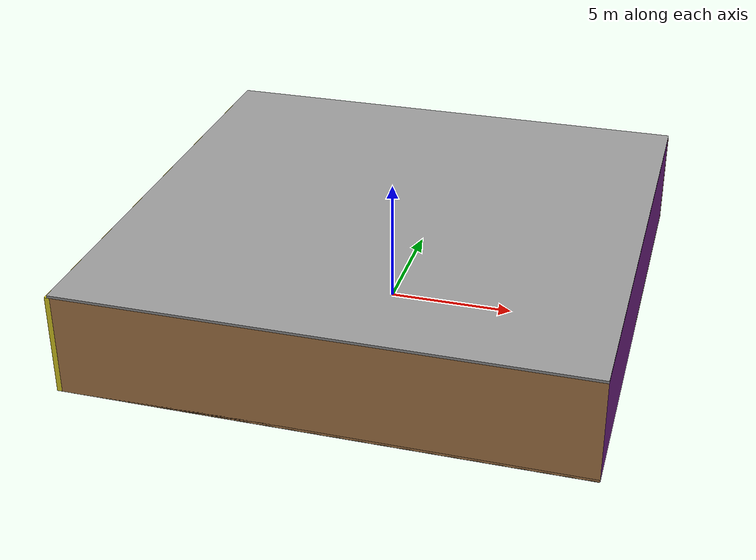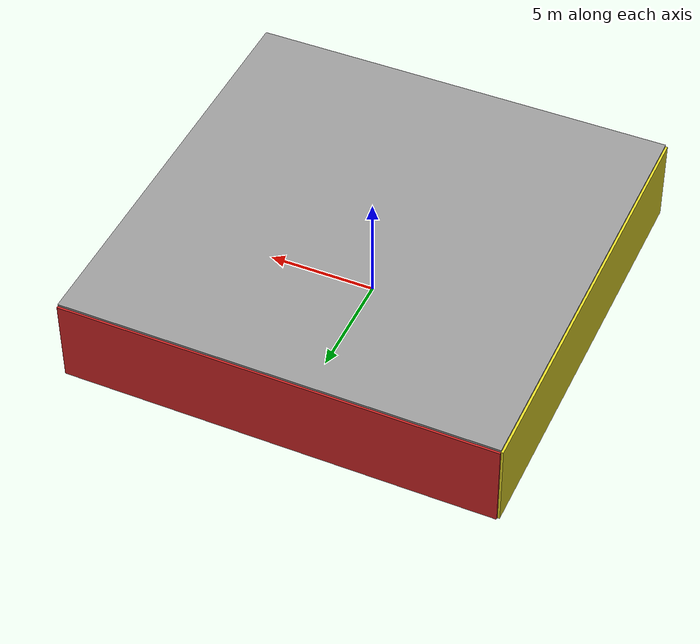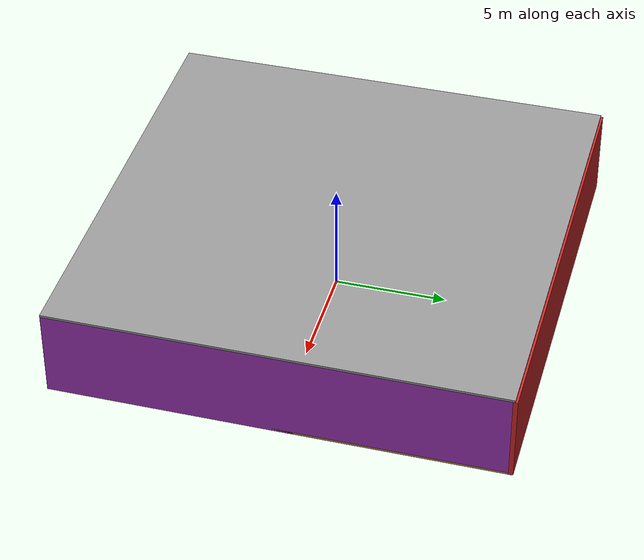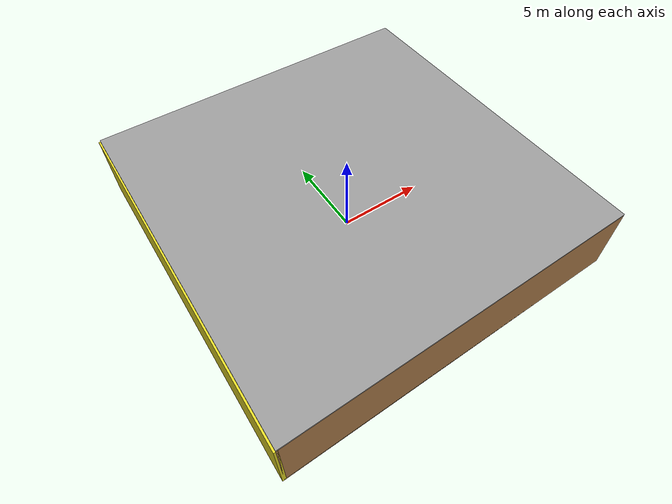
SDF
<sdf version="1.4">
 <world name="default">
  <physics type="ode">
   <max_step_size>0.001</max_step_size>
   <real_time_factor>1</real_time_factor>
   <real_time_update_rate>1000</real_time_update_rate>
   <gravity>0 0 -9.8</gravity>
  </physics>
  <scene><ambient>0.4 0.4 0.4 1</ambient><background>0.7 0.7 0.7 1</background><shadows>1</shadows></scene>
  <model name="Surrounding">
   <static>1</static>
   <link name="Ceiling">
    <collision name="Ceiling_Collision"><geometry><box><size>20 20 0.1</size></box></geometry></collision>
    <visual name="Ceiling_Visual">
     <geometry><box><size>20 20 0.1</size></box></geometry>
     <material>
      <script><uri>file://media/materials/scripts/gazebo.material</uri><name>Gazebo/Grey</name></script>
     </material>
    </visual>
    <pose>0 0 4.05 0 0 0</pose>
   </link>
   <link name="Wall_South">
    <collision name="Wall_South_Collision">
     <geometry><box><size>20 0 4</size></box></geometry>
     <pose>0 0 2 0 -0 0</pose>
    </collision>
    <visual name="Wall_South_Visual">
     <pose>0 0 2 0 -0 0</pose>
     <geometry><box><size>20 0 4</size></box></geometry>
     <material>
      <script><uri>file://media/materials/scripts/gazebo.material</uri><name>Gazebo/WoodPallet</name></script>
     </material>
    </visual>
    <velocity_decay><linear>0</linear><angular>0</angular></velocity_decay>
    <pose>0 -10 0 0 -0 0</pose>
   </link>
   <link name="Wall_East">
    <collision name="Wall_21_Collision">
     <geometry><box><size>20 0 4</size></box></geometry>
     <pose>0 0 2 0 -0 0</pose>
    </collision>
    <visual name="Wall_21_Visual">
     <pose>0 0 2 0 -0 0</pose>
     <geometry><box><size>20 0 4</size></box></geometry>
     <material>
      <script><uri>file://media/materials/scripts/gazebo.material</uri><name>Gazebo/PurpleGlow</name></script>
     </material>
    </visual>
    <velocity_decay><linear>0</linear><angular>0</angular></velocity_decay>
    <pose>10 0 0 0 -0 1.5708</pose>
   </link>
   <link name="Wall_North">
    <collision name="Wall_22_Collision">
     <geometry><box><size>20 0.2 4</size></box></geometry>
     <pose>0 0 2 0 -0 0</pose>
    </collision>
    <visual name="Wall_22_Visual">
     <pose>0 0 2 0 -0 0</pose>
     <geometry><box><size>20 0.2 4</size></box></geometry>
     <material>
      <script><uri>file://media/materials/scripts/gazebo.material</uri><name>Gazebo/RedBright</name></script>
     </material>
    </visual>
    <velocity_decay><linear>0</linear><angular>0</angular></velocity_decay>
    <pose>0 10 0 0 -0 0</pose>
   </link>
   <link name="Wall_West">
    <collision name="Wall_23_Collision">
     <geometry><box><size>20 0.2 4</size></box></geometry>
     <pose>0 0 2 0 -0 0</pose>
    </collision>
    <visual name="Wall_23_Visual">
     <pose>0 0 2 0 -0 0</pose>
     <geometry><box><size>20 0.2 4</size></box></geometry>
     <material>
      <script><uri>file://media/materials/scripts/gazebo.material</uri><name>Gazebo/YellowGlow</name></script>
     </material>
    </visual>
    <velocity_decay><linear>0</linear><angular>0</angular></velocity_decay>
    <pose>-10 0 0 0 0 -1.5708</pose>
   </link>
   <link name="Ground_link">
    <collision name="collision">
     <pose>0 0 .05 0 -0 0</pose>
     <geometry><box><size>20 20 0.1</size></box></geometry>
    </collision>
    <visual name="visual">
     <pose>0 0 .05 0 -0 0</pose>
     <geometry><box><size>20 20 0.1</size></box></geometry>
     <material>
      <script><uri>file://media/materials/scripts/gazebo.material</uri><name>Gazebo/Wood</name></script>
     </material>
    </visual>
   </link>
   <static>1</static>
  </model>
  <spherical_coordinates>
   <surface_model>EARTH_WGS84</surface_model>
   <latitude_deg>0</latitude_deg>
   <longitude_deg>0</longitude_deg>
   <elevation>0</elevation>
   <heading_deg>0</heading_deg>
  </spherical_coordinates>
  <light name="lightball_0" type="diffuse">
   <diffuse>0.8 0.8 0.8 1</diffuse>
   <specular>0.2 0.2 0.2 1</specular>
   <attenuation>
    <range>100</range>
    <constant>0.7</constant>
    <linear>0.01</linear>
    <quadratic>0.001</quadratic>
   </attenuation>
   <direction>-0.5 0.1 -0.9</direction>
   <pose>3.06334325164 6.9378521723 3.70644781284 0 0 0</pose>
  </light>
  <light name="lightball_1" type="diffuse">
   <diffuse>0.8 0.8 0.8 1</diffuse>
   <specular>0.2 0.2 0.2 1</specular>
   <attenuation>
    <range>100</range>
    <constant>0.7</constant>
    <linear>0.01</linear>
    <quadratic>0.001</quadratic>
   </attenuation>
   <direction>-0.5 0.1 -0.9</direction>
   <pose>1.40144687487 8.64026209622 1.62643668336 0 0 0</pose>
  </light>
  <light name="lightball_2" type="diffuse">
   <diffuse>0.8 0.8 0.8 1</diffuse>
   <specular>0.2 0.2 0.2 1</specular>
   <attenuation>
    <range>100</range>
    <constant>0.7</constant>
    <linear>0.01</linear>
    <quadratic>0.001</quadratic>
   </attenuation>
   <direction>-0.5 0.1 -0.9</direction>
   <pose>-8.78283740639 5.52207525629 1.79248885676 0 0 0</pose>
  </light>
  <light name="lightball_3" type="diffuse">
   <diffuse>0.8 0.8 0.8 1</diffuse>
   <specular>0.2 0.2 0.2 1</specular>
   <attenuation>
    <range>100</range>
    <constant>0.7</constant>
    <linear>0.01</linear>
    <quadratic>0.001</quadratic>
   </attenuation>
   <direction>-0.5 0.1 -0.9</direction>
   <pose>-6.72537945199 -8.32968438611 2.36929396204 0 0 0</pose>
  </light>
  <light name="lightball_4" type="diffuse">
   <diffuse>0.8 0.8 0.8 1</diffuse>
   <specular>0.2 0.2 0.2 1</specular>
   <attenuation>
    <range>100</range>
    <constant>0.7</constant>
    <linear>0.01</linear>
    <quadratic>0.001</quadratic>
   </attenuation>
   <direction>-0.5 0.1 -0.9</direction>
   <pose>-9.48987169954 6.9371421193 2.59370376274 0 0 0</pose>
  </light>
  <include>
   <uri>model://robocup_3Dsim_goal</uri>
   <pose>-7.27061695189 0.828277115552 0 0 0 1.64704702013</pose>
  </include>
  <include><uri>model://cabinet</uri><pose>-1.24878805639 -1.1152995254 0 0 0 1.25035437742</pose></include>
  <include>
   <uri>model://construction_cone</uri>
   <pose>-1.1920139908 2.5706319143 0 0 0 1.57338650874</pose>
  </include>
  <include>
   <uri>model://construction_cone</uri>
   <pose>2.23745062381 -4.97665064553 0 0 0 1.49660708072</pose>
  </include>
 </world>
</sdf>

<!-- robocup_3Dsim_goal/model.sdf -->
<sdf version="1.5">
  <model name="robocup_3d_goal">
    <static>true</static>
    <link name="left_post">
      <pose>0 1.05 0.45 0 0 0</pose>
      <collision name="collision">
        <geometry>
          <cylinder>
            <radius>0.05</radius>
            <length>0.9</length>
          </cylinder>
        </geometry>
      </collision>
      <visual name="visual">
        <geometry>
          <cylinder>
            <radius>0.05</radius>
            <length>0.9</length>
          </cylinder>
        </geometry>
        <material>
          <script>
            <uri>file://media/materials/scripts/gazebo.material</uri>
            <name>Gazebo/ZincYellow</name>
          </script>
        </material>
      </visual>
    </link>
    <link name="left_support_horiz_lower">
      <pose>0.30 1.05 0.01 0 0 0</pose>
      <collision name="collision">
        <geometry>
          <box>
            <size>0.50 0.02 0.02</size>
          </box>
        </geometry>
      </collision>
      <visual name="visual">
        <geometry>
          <box>
            <size>0.50 0.02 0.02</size>
          </box>
        </geometry>
        <material>
          <script>
            <uri>file://media/materials/scripts/gazebo.material</uri>
            <name>Gazebo/White</name>
          </script>
        </material>
      </visual>
    </link>
    <link name="left_support_horiz_upper">
      <pose>0.30 1.05 0.79 0 0 0</pose>
      <collision name="collision">
        <geometry>
          <box>
            <size>0.50 0.02 0.02</size>
          </box>
        </geometry>
      </collision>
      <visual name="visual">
        <geometry>
          <box>
            <size>0.50 0.02 0.02</size>
          </box>
        </geometry>
        <material>
          <script>
            <uri>file://media/materials/scripts/gazebo.material</uri>
            <name>Gazebo/White</name>
          </script>
        </material>
      </visual>
    </link>
    <link name="left_support_vertical">
      <pose>0.56 1.05 0.4 0 1.5708 0</pose>
      <collision name="collision">
        <geometry>
          <box>
            <size>0.80 0.02 0.02</size>
          </box>
        </geometry>
      </collision>
      <visual name="visual">
        <geometry>
          <box>
            <size>0.80 0.02 0.02</size>
          </box>
        </geometry>
        <material>
          <script>
            <uri>file://media/materials/scripts/gazebo.material</uri>
            <name>Gazebo/White</name>
          </script>
        </material>
      </visual>
    </link>
    <link name="right_support_horiz_lower">
      <pose>0.30 -1.05 0.01 0 0 0</pose>
      <collision name="collision">
        <geometry>
          <box>
            <size>0.50 0.02 0.02</size>
          </box>
        </geometry>
      </collision>
      <visual name="visual">
        <geometry>
          <box>
            <size>0.50 0.02 0.02</size>
          </box>
        </geometry>
        <material>
          <script>
            <uri>file://media/materials/scripts/gazebo.material</uri>
            <name>Gazebo/White</name>
          </script>
        </material>
      </visual>
    </link>
    <link name="right_support_horiz_upper">
      <pose>0.30 -1.05 0.79 0 0 0</pose>
      <collision name="collision">
        <geometry>
          <box>
            <size>0.50 0.02 0.02</size>
          </box>
        </geometry>
      </collision>
      <visual name="visual">
        <geometry>
          <box>
            <size>0.50 0.02 0.02</size>
          </box>
        </geometry>
        <material>
          <script>
            <uri>file://media/materials/scripts/gazebo.material</uri>
            <name>Gazebo/White</name>
          </script>
        </material>
      </visual>
    </link>
    <link name="right_support_vertical">
      <pose>0.56 -1.05 0.4 0 1.5708 0</pose>
      <collision name="collision">
        <geometry>
          <box>
            <size>0.80 0.02 0.02</size>
          </box>
        </geometry>
      </collision>
      <visual name="visual">
        <geometry>
          <box>
            <size>0.80 0.02 0.02</size>
          </box>
        </geometry>
        <material>
          <script>
            <uri>file://media/materials/scripts/gazebo.material</uri>
            <name>Gazebo/White</name>
          </script>
        </material>
      </visual>
    </link>
    <link name="center_support_horiz_lower">
      <pose>0.56 0 0.01 0 1.5708 0</pose>
      <collision name="collision">
        <geometry>
          <box>
            <size>0.02 2.08 0.02</size>
          </box>
        </geometry>
      </collision>
      <visual name="visual">
        <geometry>
          <box>
            <size>0.02 2.08 0.02</size>
          </box>
        </geometry>
        <material>
          <script>
            <uri>file://media/materials/scripts/gazebo.material</uri>
            <name>Gazebo/White</name>
          </script>
        </material>
      </visual>
    </link>
    <link name="center_support_horiz_upper">
      <pose>0.56 0 0.79 0 1.5708 0</pose>
      <collision name="collision">
        <geometry>
          <box>
            <size>0.02 2.08 0.02</size>
          </box>
        </geometry>
      </collision>
      <visual name="visual">
        <geometry>
          <box>
            <size>0.02 2.08 0.02</size>
          </box>
        </geometry>
        <material>
          <script>
            <uri>file://media/materials/scripts/gazebo.material</uri>
            <name>Gazebo/White</name>
          </script>
        </material>
      </visual>
    </link>
    <link name="right_post">
      <pose>0 -1.05 0.45 0 0 0</pose>
      <collision name="collision">
        <geometry>
          <cylinder>
            <radius>0.05</radius>
            <length>0.9</length>
          </cylinder>
        </geometry>
      </collision>
      <visual name="visual">
        <geometry>
          <cylinder>
            <radius>0.05</radius>
            <length>0.9</length>
          </cylinder>
        </geometry>
        <material>
          <script>
            <uri>file://media/materials/scripts/gazebo.material</uri>
            <name>Gazebo/ZincYellow</name>
          </script>
        </material>
      </visual>
    </link>
    <link name="crossbar">
      <pose>0 0 0.85 1.57 1.57 0</pose>
      <collision name="collision">
        <geometry>
          <cylinder>
            <radius>0.05</radius>
            <length>2.0</length>
          </cylinder>
        </geometry>
      </collision>
      <visual name="visual">
        <geometry>
          <cylinder>
            <radius>0.05</radius>
            <length>2.0</length>
          </cylinder>
        </geometry>
        <material>
          <script>
            <uri>file://media/materials/scripts/gazebo.material</uri>
            <name>Gazebo/ZincYellow</name>
          </script>
        </material>
      </visual>
    </link>
    <link name="center_net">
      <pose>0.56 0 0.40 0 0 0</pose>
      <collision name="collision">
        <geometry>
          <box>
            <size>0.01 2.1 0.80</size>
          </box>
        </geometry>
      </collision>
      <visual name="visual">
        <geometry>
          <box>
            <size>0.01 2.1 0.80</size>
          </box>
        </geometry>
        <material>
          <script>
            <uri>model://../model_source/models/robocup09_spl_field/materials/scripts/</uri>
            <uri>model://../model_source/models/robocup09_spl_field/materials/textures/</uri>
            <name>RoboCup/Net</name>
          </script>
        </material>
      </visual>
    </link>
    <link name="left_net">
      <pose>0.30 1.05 0.40 0 0 0</pose>
      <collision name="collision">
        <geometry>
          <box>
            <size>0.50 0.01 0.76</size>
          </box>
        </geometry>
      </collision>
      <visual name="visual">
        <geometry>
          <box>
            <size>0.50 0.01 0.76</size>
          </box>
        </geometry>
        <material>
          <script>
            <uri>model://../model_source/models/robocup09_spl_field/materials/scripts/</uri>
            <uri>model://../model_source/models/robocup09_spl_field/materials/textures/</uri>
            <name>RoboCup/Net</name>
          </script>
        </material>
      </visual>
    </link>
    <link name="right_net">
      <pose>0.30 -1.05 0.40 0 0 0</pose>
      <collision name="collision">
        <geometry>
          <box>
            <size>0.50 0.01 0.76</size>
          </box>
        </geometry>
      </collision>
      <visual name="visual">
        <geometry>
          <box>
            <size>0.50 0.01 0.76</size>
          </box>
        </geometry>
        <material>
          <script>
            <uri>model://../model_source/models/robocup09_spl_field/materials/scripts/</uri>
            <uri>model://../model_source/models/robocup09_spl_field/materials/textures/</uri>
            <name>RoboCup/Net</name>
          </script>
        </material>
      </visual>
    </link>
  </model>
</sdf>

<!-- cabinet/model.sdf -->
<sdf version="1.5">
  <model name="cabinet">
    <static>true</static>
    <link name="cabinet_bottom_plate">
      <inertial>
        <pose>0 0 -1 0 0 0</pose>
        <inertia>
          <ixx>2.050000</ixx>
          <ixy>0</ixy>
          <ixz>0</ixz>
          <iyy>2.050000</iyy>
          <iyz>0</iyz>
          <izz>2.050000</izz>
        </inertia>
        <mass>25.000000</mass>
      </inertial>
      <collision name="cabinet_bottom_plate_geom">
        <pose>0 0 0.010000 0 0 0</pose>
        <geometry>
          <box>
            <size>0.450000 0.450000 0.020000</size>
          </box>
        </geometry>
      </collision>
      <visual name="cabinet_bottom_plate_geom_visual">
        <pose>0 0 0.010000 0 0 0</pose>
        <geometry>
          <box>
            <size>0.450000 0.450000 0.020000</size>
          </box>
        </geometry>
        <material>
          <script>
            <uri>model://media/materials/scripts/gazebo.material</uri>
            <name>Gazebo/Wood</name>
          </script>
        </material>
      </visual>
      <collision name="cabinet_bottom_plate_geom_cabinet_back_plate">
        <pose>0.235000 0 0.510000 0 0 0</pose>
        <geometry>
          <box>
            <size>0.020000 0.450000 1.020000</size>
          </box>
        </geometry>
      </collision>
      <visual name="cabinet_bottom_plate_geom_cabinet_back_plate_visual">
        <pose>0.235000 0 0.510000 0 0 0</pose>
        <geometry>
          <box>
            <size>0.020000 0.450000 1.020000</size>
          </box>
        </geometry>
        <material>
          <script>
            <uri>model://media/materials/scripts/gazebo.material</uri>
            <name>Gazebo/Wood</name>
          </script>
        </material>
      </visual>
      <collision name="cabinet_bottom_plate_geom_cabinet_left_plate">
        <pose>0 0.235000 0.510000 0 0 0</pose>
        <geometry>
          <box>
            <size>0.450000 0.020000 1.020000</size>
          </box>
        </geometry>
      </collision>
      <visual name="cabinet_bottom_plate_geom_cabinet_left_plate_visual">
        <pose>0 0.235000 0.510000 0 0 0</pose>
        <geometry>
          <box>
            <size>0.450000 0.020000 1.020000</size>
          </box>
        </geometry>
        <material>
          <script>
            <uri>model://media/materials/scripts/gazebo.material</uri>
            <name>Gazebo/Wood</name>
          </script>
        </material>
      </visual>
      <collision name="cabinet_bottom_plate_geom_cabinet_middle_plate">
        <pose>0 0 0.510000 0 0 0</pose>
        <geometry>
          <box>
            <size>0.450000 0.450000 0.020000</size>
          </box>
        </geometry>
      </collision>
      <visual name="cabinet_bottom_plate_geom_cabinet_middle_plate_visual">
        <pose>0 0 0.510000 0 0 0</pose>
        <geometry>
          <box>
            <size>0.450000 0.450000 0.020000</size>
          </box>
        </geometry>
        <material>
          <script>
            <uri>model://media/materials/scripts/gazebo.material</uri>
            <name>Gazebo/Wood</name>
          </script>
        </material>
      </visual>
      <collision name="cabinet_bottom_plate_geom_cabinet_right_plate">
        <pose>0 -0.235000 0.510000 0 0 0</pose>
        <geometry>
          <box>
            <size>0.450000 0.020000 1.020000</size>
          </box>
        </geometry>
      </collision>
      <visual name="cabinet_bottom_plate_geom_cabinet_right_plate_visual">
        <pose>0 -0.235000 0.510000 0 0 0</pose>
        <geometry>
          <box>
            <size>0.450000 0.020000 1.020000</size>
          </box>
        </geometry>
        <material>
          <script>
            <uri>model://media/materials/scripts/gazebo.material</uri>
            <name>Gazebo/Wood</name>
          </script>
        </material>
      </visual>
      <collision name="cabinet_bottom_plate_geom_cabinet_top_plate">
        <pose>0 0 1.010000 0 0 0</pose>
        <geometry>
          <box>
            <size>0.450000 0.450000 0.020000</size>
          </box>
        </geometry>
      </collision>
      <visual name="cabinet_bottom_plate_geom_cabinet_top_plate_visual">
        <pose>0 0 1.010000 0 0 0</pose>
        <geometry>
          <box>
            <size>0.450000 0.450000 0.020000</size>
          </box>
        </geometry>
        <material>
          <script>
            <uri>model://media/materials/scripts/gazebo.material</uri>
            <name>Gazebo/Wood</name>
          </script>
        </material>
      </visual>
    </link>
  </model>
</sdf>

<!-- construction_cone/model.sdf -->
<sdf version="1.5">
  <model name="Construction Cone">
    <link name="link">
      <collision name="collision">
        <geometry>
          <mesh>
            <scale>10 10 10</scale>
            <uri>file://isr-testbed/construction_cone/meshes/construction_cone.dae</uri>
          </mesh>
        </geometry>
      </collision>
      <visual name="visual">
        <geometry>
          <mesh>
            <scale>10 10 10</scale>
            <uri>file://isr-testbed/construction_cone/meshes/construction_cone.dae</uri>
          </mesh>
        </geometry>
      </visual>
    </link>
  </model>
</sdf>
